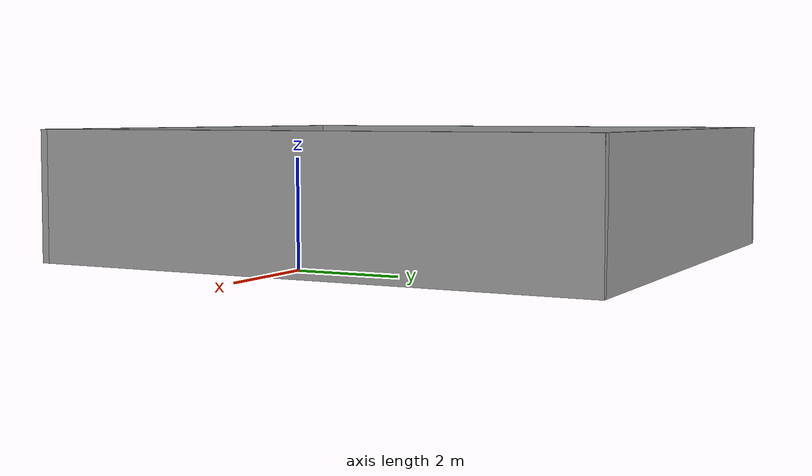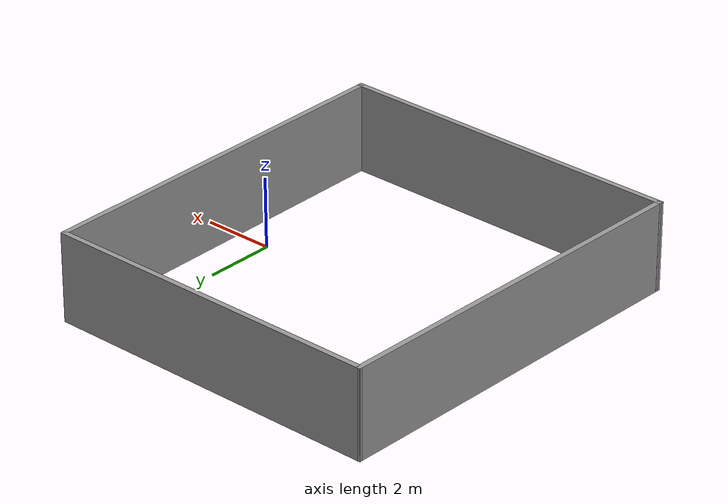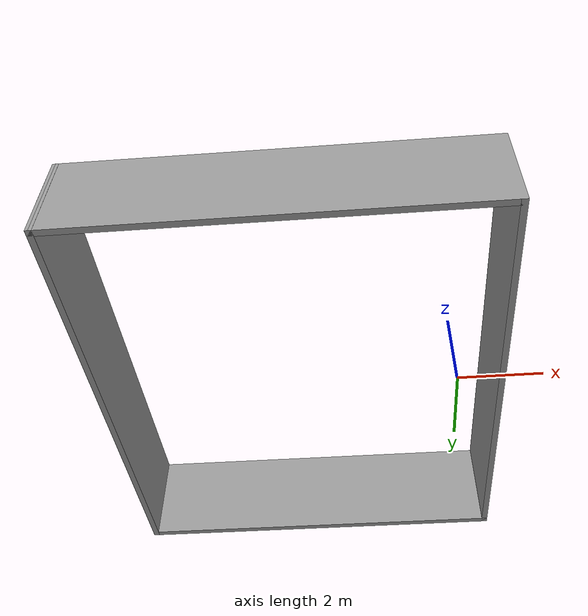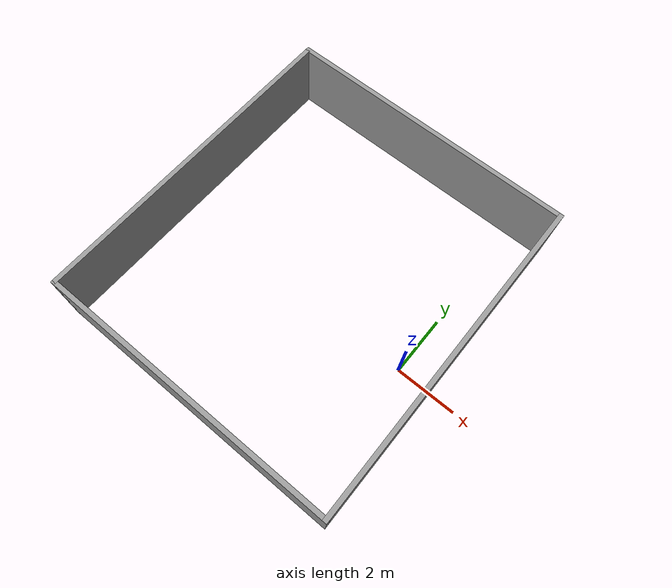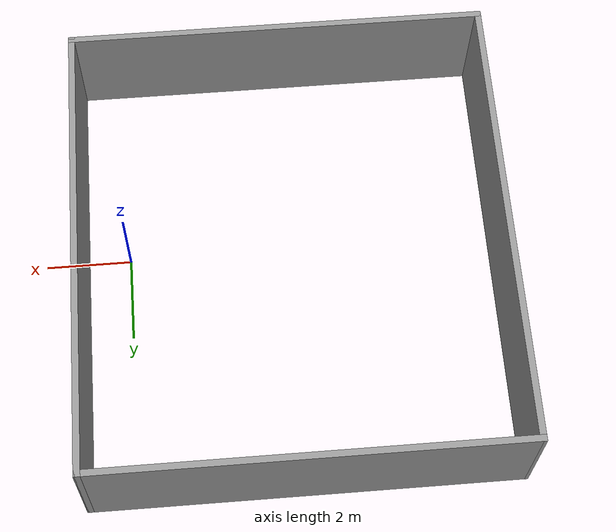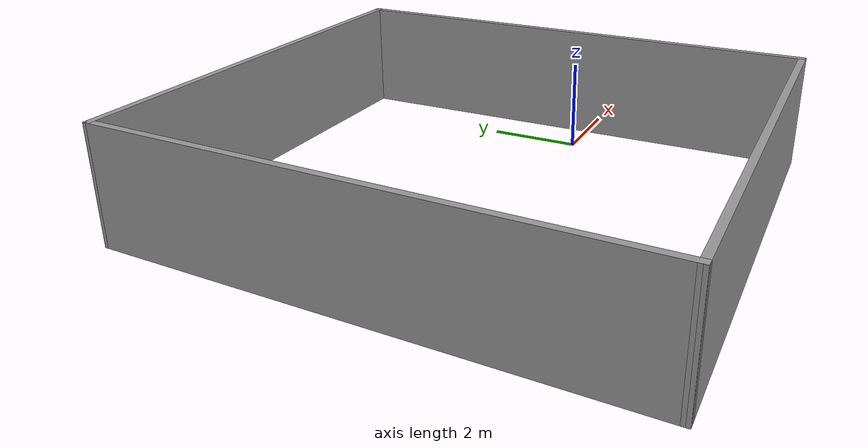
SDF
<?xml version='1.0'?>
<sdf version='1.6'>
  <model name='small_room'>
    <pose frame=''>-3.86504 0.588637 0 0 -0 0</pose>
    <link name='Wall_10'>
      <collision name='Wall_10_Collision'>
        <geometry>
          <box>
            <size>11.0029 0.15 2.5</size>
          </box>
        </geometry>
        <pose frame=''>0 0 1.25 0 -0 0</pose>
      </collision>
      <visual name='Wall_10_Visual'>
        <pose frame=''>0 0 1.25 0 -0 0</pose>
        <geometry>
          <box>
            <size>11.0029 0.15 2.5</size>
          </box>
        </geometry>
        <material>
          <script>
            <uri>file://media/materials/scripts/gazebo.material</uri>
            <name>Gazebo/Grey</name>
          </script>
          <ambient>1 1 1 1</ambient>
        </material>
        <meta>
          <layer>0</layer>
        </meta>
      </visual>
      <pose frame=''>-4.79915 0 0 0 0 -1.59383</pose>
    </link>
    <link name='Wall_6'>
      <collision name='Wall_6_Collision'>
        <geometry>
          <box>
            <size>9.75 0.15 2.5</size>
          </box>
        </geometry>
        <pose frame=''>0 0 1.25 0 -0 0</pose>
      </collision>
      <visual name='Wall_6_Visual'>
        <pose frame=''>0 0 1.25 0 -0 0</pose>
        <geometry>
          <box>
            <size>9.75 0.15 2.5</size>
          </box>
        </geometry>
        <material>
          <script>
            <uri>file://media/materials/scripts/gazebo.material</uri>
            <name>Gazebo/Grey</name>
          </script>
          <ambient>1 1 1 1</ambient>
        </material>
        <meta>
          <layer>0</layer>
        </meta>
      </visual>
      <pose frame=''>0.125853 5.425 0 0 -0 0</pose>
    </link>
    <link name='Wall_7'>
      <collision name='Wall_7_Collision'>
        <geometry>
          <box>
            <size>11 0.15 2.5</size>
          </box>
        </geometry>
        <pose frame=''>0 0 1.25 0 -0 0</pose>
      </collision>
      <visual name='Wall_7_Visual'>
        <pose frame=''>0 0 1.25 0 -0 0</pose>
        <geometry>
          <box>
            <size>11 0.15 2.5</size>
          </box>
        </geometry>
        <material>
          <script>
            <uri>file://media/materials/scripts/gazebo.material</uri>
            <name>Gazebo/Grey</name>
          </script>
          <ambient>1 1 1 1</ambient>
        </material>
        <meta>
          <layer>0</layer>
        </meta>
      </visual>
      <pose frame=''>4.92585 0 0 0 0 -1.5708</pose>
    </link>
    <link name='Wall_8'>
      <collision name='Wall_8_Collision'>
        <geometry>
          <box>
            <size>10 0.15 2.5</size>
          </box>
        </geometry>
        <pose frame=''>0 0 1.25 0 -0 0</pose>
      </collision>
      <visual name='Wall_8_Visual'>
        <pose frame=''>0 0 1.25 0 -0 0</pose>
        <geometry>
          <box>
            <size>10 0.15 2.5</size>
          </box>
        </geometry>
        <material>
          <script>
            <uri>file://media/materials/scripts/gazebo.material</uri>
            <name>Gazebo/Grey</name>
          </script>
          <ambient>1 1 1 1</ambient>
        </material>
        <meta>
          <layer>0</layer>
        </meta>
      </visual>
      <pose frame=''>0.000853 -5.425 0 0 -0 3.14159</pose>
    </link>
    <static>1</static>
  </model>
</sdf>
